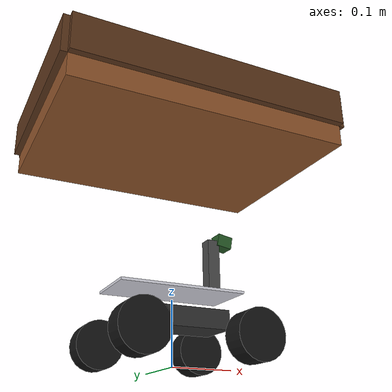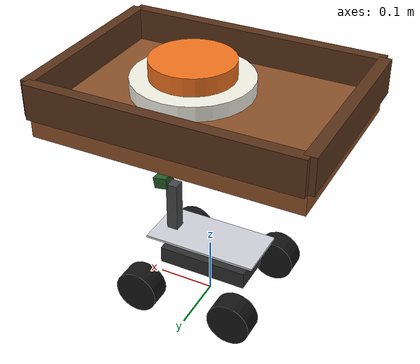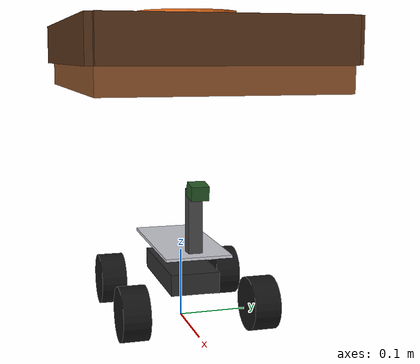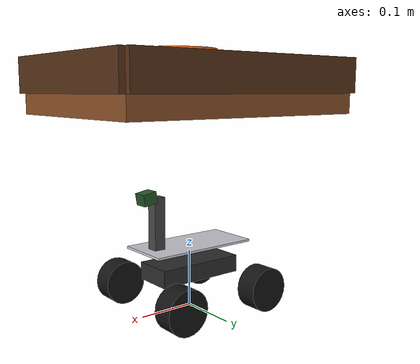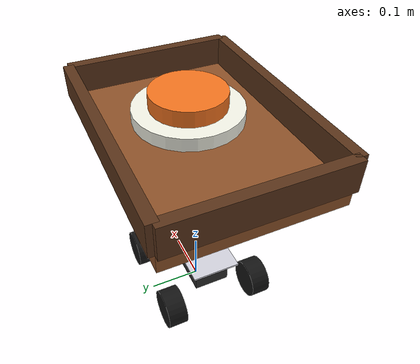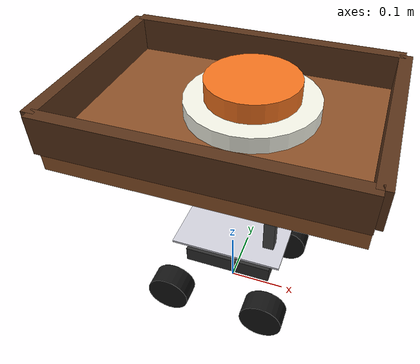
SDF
<?xml version="1.0" ?>
<sdf version="1.10">
  <model name="ackermann_car">
    <static>false</static>
    <self_collide>false</self_collide>

    <link name="chassis">
    <!-- Delivery tray fixed on robot chassis -->
<visual name="delivery_tray_base">
  <pose>0 0 0.28 0 0 0</pose>
  <geometry>
    <box>
      <size>0.45 0.32 0.04</size>
    </box>
  </geometry>
  <material>
    <ambient>0.55 0.32 0.16 1</ambient>
    <diffuse>0.55 0.32 0.16 1</diffuse>
  </material>
</visual>

<visual name="delivery_tray_plate">
  <pose>0.03 0 0.325 0 0 0</pose>
  <geometry>
    <cylinder>
      <radius>0.10</radius>
      <length>0.025</length>
    </cylinder>
  </geometry>
  <material>
    <ambient>0.95 0.95 0.90 1</ambient>
    <diffuse>0.95 0.95 0.90 1</diffuse>
  </material>
</visual>

<visual name="delivery_tray_food">
  <pose>0.03 0 0.35 0 0 0</pose>
  <geometry>
    <cylinder>
      <radius>0.07</radius>
      <length>0.035</length>
    </cylinder>
  </geometry>
  <material>
    <ambient>0.95 0.45 0.12 1</ambient>
    <diffuse>0.95 0.45 0.12 1</diffuse>
  </material>
</visual>

<visual name="delivery_tray_front_lip">
  <pose>0.225 0 0.325 0 0 0</pose>
  <geometry>
    <box>
      <size>0.02 0.32 0.06</size>
    </box>
  </geometry>
  <material>
    <ambient>0.35 0.20 0.10 1</ambient>
    <diffuse>0.35 0.20 0.10 1</diffuse>
  </material>
</visual>

<visual name="delivery_tray_back_lip">
  <pose>-0.225 0 0.325 0 0 0</pose>
  <geometry>
    <box>
      <size>0.02 0.32 0.06</size>
    </box>
  </geometry>
  <material>
    <ambient>0.35 0.20 0.10 1</ambient>
    <diffuse>0.35 0.20 0.10 1</diffuse>
  </material>
</visual>

<visual name="delivery_tray_left_lip">
  <pose>0 0.16 0.325 0 0 0</pose>
  <geometry>
    <box>
      <size>0.45 0.02 0.06</size>
    </box>
  </geometry>
  <material>
    <ambient>0.35 0.20 0.10 1</ambient>
    <diffuse>0.35 0.20 0.10 1</diffuse>
  </material>
</visual>

<visual name="delivery_tray_right_lip">
  <pose>0 -0.16 0.325 0 0 0</pose>
  <geometry>
    <box>
      <size>0.45 0.02 0.06</size>
    </box>
  </geometry>
  <material>
    <ambient>0.35 0.20 0.10 1</ambient>
    <diffuse>0.35 0.20 0.10 1</diffuse>
  </material>
</visual>
      <pose>0 0 0.08 0 0 0</pose>
      <inertial>
        <mass>1.384</mass>
        <inertia>
          <ixx>0.0073</ixx>
          <iyy>0.0091</iyy>
          <izz>0.0131</izz>
          <ixy>0</ixy>
          <ixz>0</ixz>
          <iyz>0</iyz>
        </inertia>
      </inertial>

      <collision name="base_collision">
        <pose>0 0 -0.01 0 0 0</pose>
        <geometry>
          <box>
            <size>0.16 0.07 0.03</size>
          </box>
        </geometry>
      </collision>

      <collision name="platform_collision">
        <pose>0 0 0.032 0 0 0</pose>
        <geometry>
          <box>
            <size>0.2 0.095 0.004</size>
          </box>
        </geometry>
      </collision>

      <collision name="tower_collision">
        <pose>0.07 0 0.079 0 0 0</pose>
        <geometry>
          <box>
            <size>0.02 0.02 0.09</size>
          </box>
        </geometry>
      </collision>

      <visual name="base_visual">
        <pose>0 0 -0.01 0 0 0</pose>
        <geometry>
          <box>
            <size>0.16 0.07 0.03</size>
          </box>
        </geometry>
        <material>
          <ambient>0.12 0.12 0.12 1</ambient>
          <diffuse>0.18 0.18 0.18 1</diffuse>
        </material>
      </visual>

      <visual name="platform_visual">
        <pose>0 0 0.032 0 0 0</pose>
        <geometry>
          <box>
            <size>0.2 0.095 0.004</size>
          </box>
        </geometry>
        <material>
          <ambient>0.75 0.75 0.78 1</ambient>
          <diffuse>0.82 0.82 0.86 1</diffuse>
        </material>
      </visual>

      <visual name="tower_visual">
        <pose>0.07 0 0.079 0 0 0</pose>
        <geometry>
          <box>
            <size>0.02 0.02 0.09</size>
          </box>
        </geometry>
        <material>
          <ambient>0.2 0.2 0.2 1</ambient>
          <diffuse>0.28 0.28 0.28 1</diffuse>
        </material>
      </visual>
    </link>

    <link name="front_left_steering">
      <pose>0.0875 0.092075 0.0381 0 0 0</pose>
      <inertial>
        <mass>0.02</mass>
        <inertia>
          <ixx>0.000002</ixx>
          <iyy>0.000002</iyy>
          <izz>0.000002</izz>
          <ixy>0</ixy>
          <ixz>0</ixz>
          <iyz>0</iyz>
        </inertia>
      </inertial>
    </link>

    <link name="front_right_steering">
      <pose>0.0875 -0.092075 0.0381 0 0 0</pose>
      <inertial>
        <mass>0.02</mass>
        <inertia>
          <ixx>0.000002</ixx>
          <iyy>0.000002</iyy>
          <izz>0.000002</izz>
          <ixy>0</ixy>
          <ixz>0</ixz>
          <iyz>0</iyz>
        </inertia>
      </inertial>
    </link>

    <link name="front_left_wheel">
      <pose>0.0875 0.092075 0.0381 0 0 0</pose>
      <inertial>
        <mass>0.09</mass>
        <inertia>
          <ixx>0.000044</ixx>
          <iyy>0.000065</iyy>
          <izz>0.000044</izz>
          <ixy>0</ixy>
          <ixz>0</ixz>
          <iyz>0</iyz>
        </inertia>
      </inertial>
      <collision name="collision">
        <geometry>
          <sphere>
            <radius>0.0381</radius>
          </sphere>
        </geometry>
        <surface>
          <friction>
            <ode>
              <mu>1.0</mu>
              <mu2>1.0</mu2>
            </ode>
          </friction>
        </surface>
      </collision>
      <visual name="visual">
        <pose>0 0 0 1.57079632679 0 0</pose>
        <geometry>
          <cylinder>
            <radius>0.0381</radius>
            <length>0.0381</length>
          </cylinder>
        </geometry>
        <material>
          <ambient>0.04 0.04 0.04 1</ambient>
          <diffuse>0.08 0.08 0.08 1</diffuse>
        </material>
      </visual>
    </link>

    <link name="front_right_wheel">
      <pose>0.0875 -0.092075 0.0381 0 0 0</pose>
      <inertial>
        <mass>0.09</mass>
        <inertia>
          <ixx>0.000044</ixx>
          <iyy>0.000065</iyy>
          <izz>0.000044</izz>
          <ixy>0</ixy>
          <ixz>0</ixz>
          <iyz>0</iyz>
        </inertia>
      </inertial>
      <collision name="collision">
        <geometry>
          <sphere>
            <radius>0.0381</radius>
          </sphere>
        </geometry>
        <surface>
          <friction>
            <ode>
              <mu>1.0</mu>
              <mu2>1.0</mu2>
            </ode>
          </friction>
        </surface>
      </collision>
      <visual name="visual">
        <pose>0 0 0 1.57079632679 0 0</pose>
        <geometry>
          <cylinder>
            <radius>0.0381</radius>
            <length>0.0381</length>
          </cylinder>
        </geometry>
        <material>
          <ambient>0.04 0.04 0.04 1</ambient>
          <diffuse>0.08 0.08 0.08 1</diffuse>
        </material>
      </visual>
    </link>

    <link name="rear_left_wheel">
      <pose>-0.0875 0.092075 0.0381 0 0 0</pose>
      <inertial>
        <mass>0.09</mass>
        <inertia>
          <ixx>0.000044</ixx>
          <iyy>0.000065</iyy>
          <izz>0.000044</izz>
          <ixy>0</ixy>
          <ixz>0</ixz>
          <iyz>0</iyz>
        </inertia>
      </inertial>
      <collision name="collision">
        <geometry>
          <sphere>
            <radius>0.0381</radius>
          </sphere>
        </geometry>
        <surface>
          <friction>
            <ode>
              <mu>1.0</mu>
              <mu2>1.0</mu2>
            </ode>
          </friction>
        </surface>
      </collision>
      <visual name="visual">
        <pose>0 0 0 1.57079632679 0 0</pose>
        <geometry>
          <cylinder>
            <radius>0.0381</radius>
            <length>0.0381</length>
          </cylinder>
        </geometry>
        <material>
          <ambient>0.04 0.04 0.04 1</ambient>
          <diffuse>0.08 0.08 0.08 1</diffuse>
        </material>
      </visual>
    </link>

    <link name="rear_right_wheel">
      <pose>-0.0875 -0.092075 0.0381 0 0 0</pose>
      <inertial>
        <mass>0.09</mass>
        <inertia>
          <ixx>0.000044</ixx>
          <iyy>0.000065</iyy>
          <izz>0.000044</izz>
          <ixy>0</ixy>
          <ixz>0</ixz>
          <iyz>0</iyz>
        </inertia>
      </inertial>
      <collision name="collision">
        <geometry>
          <sphere>
            <radius>0.0381</radius>
          </sphere>
        </geometry>
        <surface>
          <friction>
            <ode>
              <mu>1.0</mu>
              <mu2>1.0</mu2>
            </ode>
          </friction>
        </surface>
      </collision>
      <visual name="visual">
        <pose>0 0 0 1.57079632679 0 0</pose>
        <geometry>
          <cylinder>
            <radius>0.0381</radius>
            <length>0.0381</length>
          </cylinder>
        </geometry>
        <material>
          <ambient>0.04 0.04 0.04 1</ambient>
          <diffuse>0.08 0.08 0.08 1</diffuse>
        </material>
      </visual>
    </link>

    <link name="camera_link">
      <pose>0.09 0 0.204 0 0.174533 0</pose>
      <inertial>
        <mass>0.05</mass>
        <inertia>
          <ixx>0.000005</ixx>
          <iyy>0.000005</iyy>
          <izz>0.000005</izz>
          <ixy>0</ixy>
          <ixz>0</ixz>
          <iyz>0</iyz>
        </inertia>
      </inertial>
      <visual name="camera_body_visual">
        <geometry>
          <box>
            <size>0.025 0.025 0.02</size>
          </box>
        </geometry>
        <material>
          <ambient>0.1 0.22 0.1 1</ambient>
          <diffuse>0.15 0.35 0.15 1</diffuse>
        </material>
      </visual>
      <sensor name="front_camera" type="camera">
        <always_on>1</always_on>
        <update_rate>30</update_rate>
        <visualize>true</visualize>
        <camera>
          <horizontal_fov>1.047</horizontal_fov>
          <image>
            <width>640</width>
            <height>480</height>
            <format>R8G8B8</format>
          </image>
          <clip>
            <near>0.02</near>
            <far>100</far>
          </clip>
        </camera>
      </sensor>
    </link>

    <joint name="front_left_steer_joint" type="revolute">
      <parent>chassis</parent>
      <child>front_left_steering</child>
      <axis>
        <xyz>0 0 1</xyz>
        <limit>
          <lower>-0.6</lower>
          <upper>0.6</upper>
          <effort>100</effort>
          <velocity>5</velocity>
        </limit>
        <dynamics>
          <damping>0.4</damping>
        </dynamics>
      </axis>
    </joint>

    <joint name="front_right_steer_joint" type="revolute">
      <parent>chassis</parent>
      <child>front_right_steering</child>
      <axis>
        <xyz>0 0 1</xyz>
        <limit>
          <lower>-0.6</lower>
          <upper>0.6</upper>
          <effort>100</effort>
          <velocity>5</velocity>
        </limit>
        <dynamics>
          <damping>0.4</damping>
        </dynamics>
      </axis>
    </joint>

    <joint name="front_left_wheel_joint" type="revolute">
      <parent>front_left_steering</parent>
      <child>front_left_wheel</child>
      <axis>
        <xyz>0 1 0</xyz>
        <limit>
          <lower>-1000000</lower>
          <upper>1000000</upper>
          <effort>100</effort>
          <velocity>100</velocity>
        </limit>
        <dynamics>
          <damping>0.05</damping>
        </dynamics>
      </axis>
    </joint>

    <joint name="front_right_wheel_joint" type="revolute">
      <parent>front_right_steering</parent>
      <child>front_right_wheel</child>
      <axis>
        <xyz>0 1 0</xyz>
        <limit>
          <lower>-1000000</lower>
          <upper>1000000</upper>
          <effort>100</effort>
          <velocity>100</velocity>
        </limit>
        <dynamics>
          <damping>0.05</damping>
        </dynamics>
      </axis>
    </joint>

    <joint name="rear_left_wheel_joint" type="revolute">
      <parent>chassis</parent>
      <child>rear_left_wheel</child>
      <axis>
        <xyz>0 1 0</xyz>
        <limit>
          <lower>-1000000</lower>
          <upper>1000000</upper>
          <effort>100</effort>
          <velocity>100</velocity>
        </limit>
        <dynamics>
          <damping>0.05</damping>
        </dynamics>
      </axis>
    </joint>

    <joint name="rear_right_wheel_joint" type="revolute">
      <parent>chassis</parent>
      <child>rear_right_wheel</child>
      <axis>
        <xyz>0 1 0</xyz>
        <limit>
          <lower>-1000000</lower>
          <upper>1000000</upper>
          <effort>100</effort>
          <velocity>100</velocity>
        </limit>
        <dynamics>
          <damping>0.05</damping>
        </dynamics>
      </axis>
    </joint>

    <joint name="camera_mount_joint" type="fixed">
      <parent>chassis</parent>
      <child>camera_link</child>
    </joint>

    <plugin filename="gz-sim-ackermann-steering-system"
            name="gz::sim::systems::AckermannSteering">
      <topic>/cmd_vel</topic>
      <left_joint>rear_left_wheel_joint</left_joint>
      <right_joint>rear_right_wheel_joint</right_joint>
      <left_steering_joint>front_left_steer_joint</left_steering_joint>
      <right_steering_joint>front_right_steer_joint</right_steering_joint>
      <wheel_base>0.175</wheel_base>
      <wheel_separation>0.18415</wheel_separation>
      <kingpin_width>0.18415</kingpin_width>
      <wheel_radius>0.0381</wheel_radius>
      <steering_limit>0.6</steering_limit>
      <steer_p_gain>12</steer_p_gain>
      <min_velocity>-1.5</min_velocity>
      <max_velocity>1.5</max_velocity>
      <min_acceleration>-3.0</min_acceleration>
      <max_acceleration>3.0</max_acceleration>
      <odom_publish_frequency>30</odom_publish_frequency>
    </plugin>
  </model>
</sdf>
